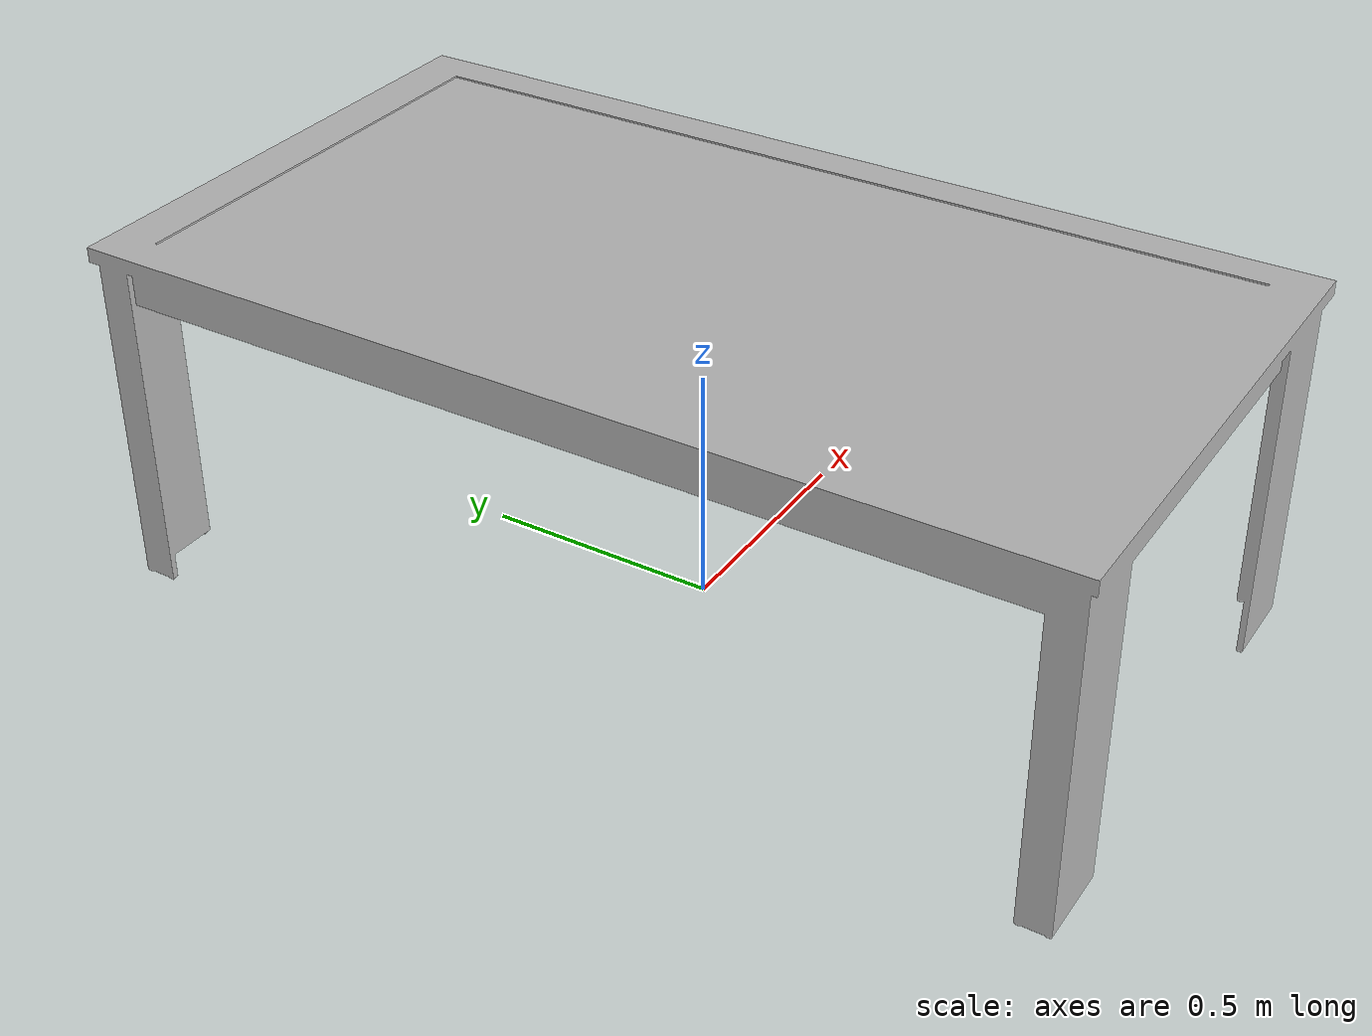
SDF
<?xml version="1.0" ?>
<sdf version="1.6">
  <model name="printerTable">
    <link name="base_link">
      <visual name="visual">
        <geometry>
          <mesh>
            <uri>model://printerTable/meshes/printerTable.dae</uri>
            <scale>1 1 1</scale> <!-- Adjust as necessary -->
          </mesh>
        </geometry>
      </visual>
      <collision name="base_collision">
        <geometry>
          <mesh>
            <uri>model://printerTable/meshes/printerTable.dae</uri>
          </mesh>
        </geometry>
      </collision>
    </link>
  </model>
</sdf>
